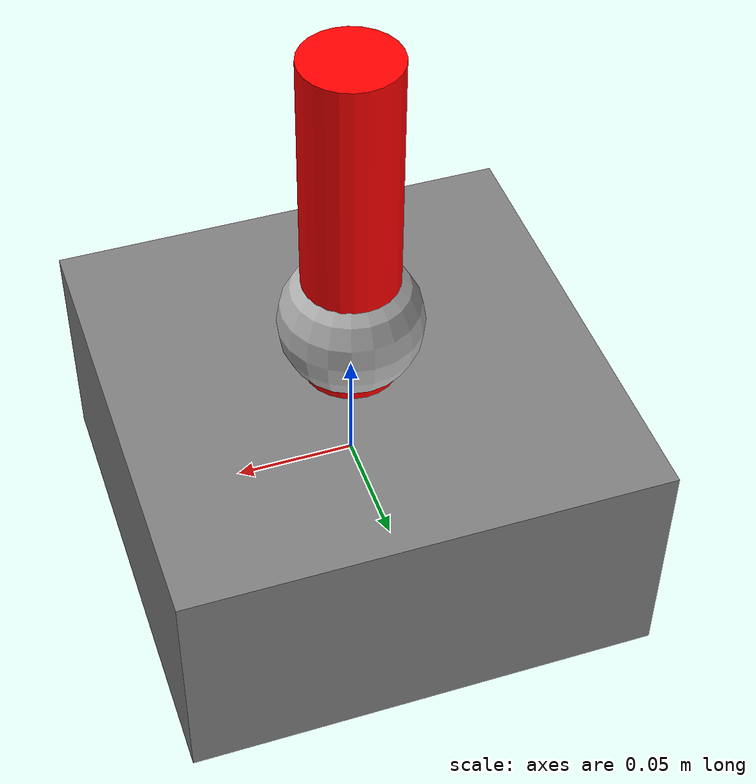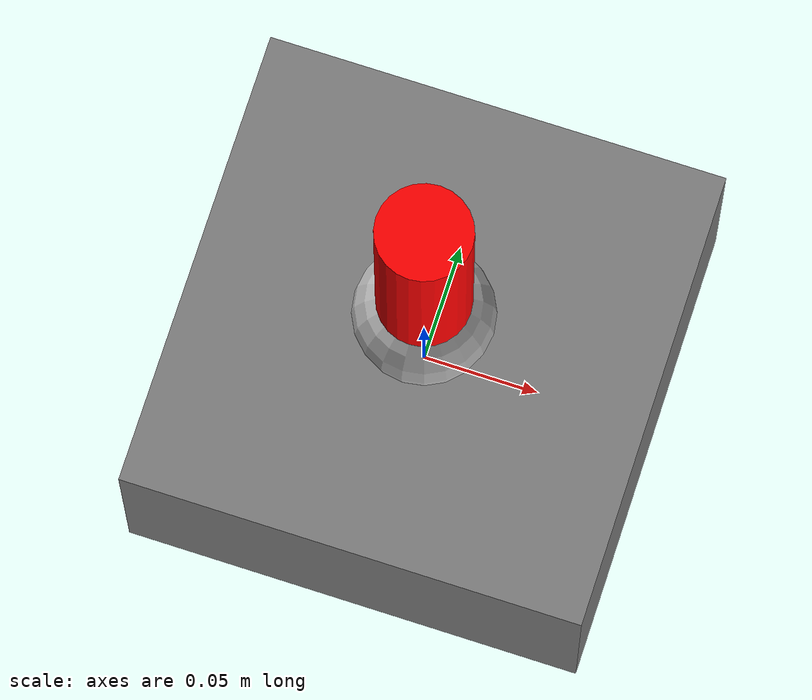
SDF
<?xml version="1.0"?>
<sdf version="1.7">
  <model name="test_robot">
    <link name="base_link">
      <inertial>
        <pose>0 0 0 0 0 0</pose>
        <mass>1.0</mass>
        <inertia>
          <ixx>0.01</ixx><ixy>0</ixy><ixz>0</ixz>
          <iyy>0.01</iyy><iyz>0</iyz><izz>0.01</izz>
        </inertia>
      </inertial>
      <visual name="visual_0">
        <pose>0 0 0 0 0 0</pose>
        <geometry>
          <box><size>0.2 0.2 0.1</size></box>
        </geometry>
        <material>
          <ambient>0.5 0.5 0.5 1</ambient>
        </material>
      </visual>
      <collision name="collision_0">
        <pose>0 0 0 0 0 0</pose>
        <geometry>
          <box><size>0.2 0.2 0.1</size></box>
        </geometry>
      </collision>
    </link>

    <link name="link1">
      <inertial>
        <pose>0 0 0.1 0 0 0</pose>
        <mass>0.5</mass>
        <inertia>
          <ixx>0.001</ixx><ixy>0</ixy><ixz>0</ixz>
          <iyy>0.001</iyy><iyz>0</iyz><izz>0.001</izz>
        </inertia>
      </inertial>
      <visual name="visual_0">
        <pose>0 0 0.1 0 0 0</pose>
        <geometry>
          <cylinder><radius>0.02</radius><length>0.2</length></cylinder>
        </geometry>
        <material>
          <ambient>1 0 0 1</ambient>
        </material>
      </visual>
    </link>

    <link name="link2">
      <inertial>
        <pose>0 0 0.075 0 0 0</pose>
        <mass>0.3</mass>
        <inertia>
          <ixx>0.0005</ixx><ixy>0</ixy><ixz>0</ixz>
          <iyy>0.0005</iyy><iyz>0</iyz><izz>0.0005</izz>
        </inertia>
      </inertial>
      <visual name="visual_0">
        <pose>0 0 0.075 0 0 0</pose>
        <geometry>
          <sphere><radius>0.03</radius></sphere>
        </geometry>
      </visual>
    </link>

    <link name="fixed_part">
      <inertial>
        <pose>0 0 0 0 0 0</pose>
        <mass>0.1</mass>
        <inertia>
          <ixx>0.0001</ixx><ixy>0</ixy><ixz>0</ixz>
          <iyy>0.0001</iyy><iyz>0</iyz><izz>0.0001</izz>
        </inertia>
      </inertial>
      <visual name="visual_0">
        <pose>0 0 0 0 0 0</pose>
        <geometry>
          <box><size>0.05 0.05 0.02</size></box>
        </geometry>
      </visual>
    </link>

    <joint name="joint1" type="revolute">
      <parent>base_link</parent>
      <child>link1</child>
      <pose>0 0 0.05 0 0 0</pose>
      <axis>
        <xyz>0 1 0</xyz>
        <limit>
          <lower>-1.57</lower>
          <upper>1.57</upper>
          <effort>10</effort>
          <velocity>5</velocity>
        </limit>
      </axis>
    </joint>

    <joint name="joint2" type="revolute">
      <parent>link1</parent>
      <child>link2</child>
      <pose>0 0 0.2 0 0 0</pose>
      <axis>
        <xyz>0 1 0</xyz>
        <limit>
          <lower>-2</lower>
          <upper>2</upper>
          <effort>5</effort>
          <velocity>3</velocity>
        </limit>
      </axis>
    </joint>

    <joint name="fixed_joint" type="fixed">
      <parent>base_link</parent>
      <child>fixed_part</child>
      <pose>0.1 0 0 0 0 0</pose>
    </joint>
  </model>
</sdf>
